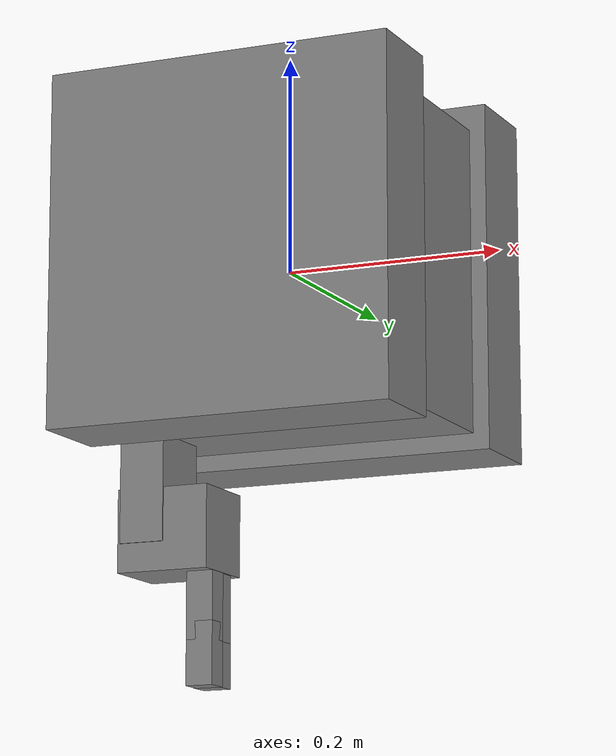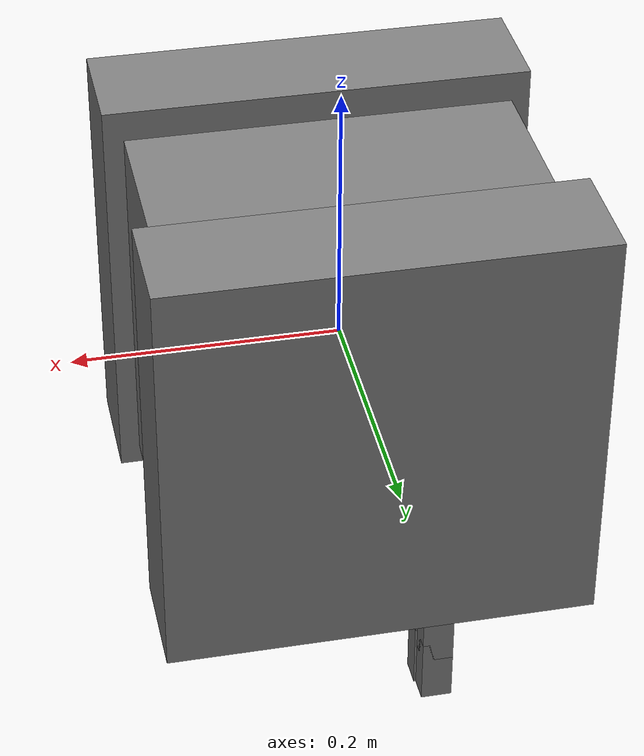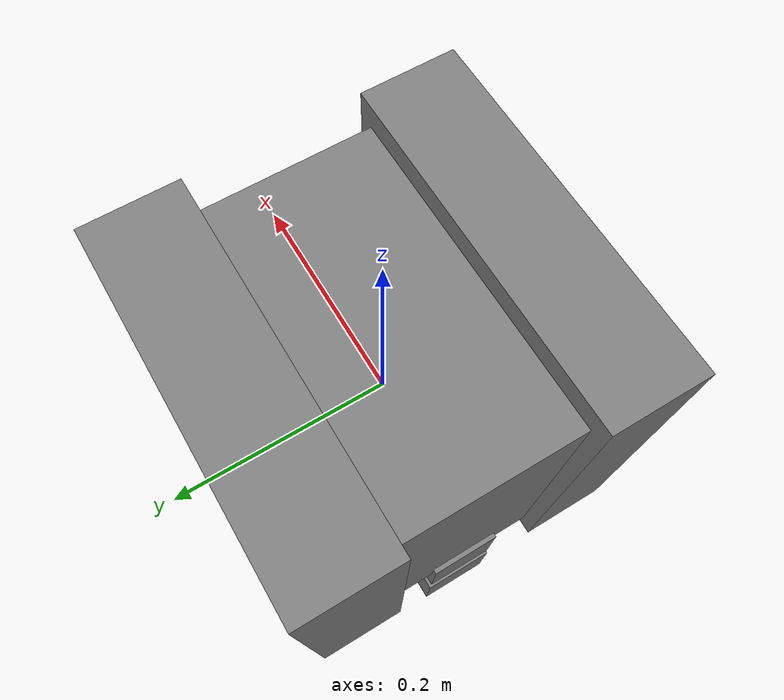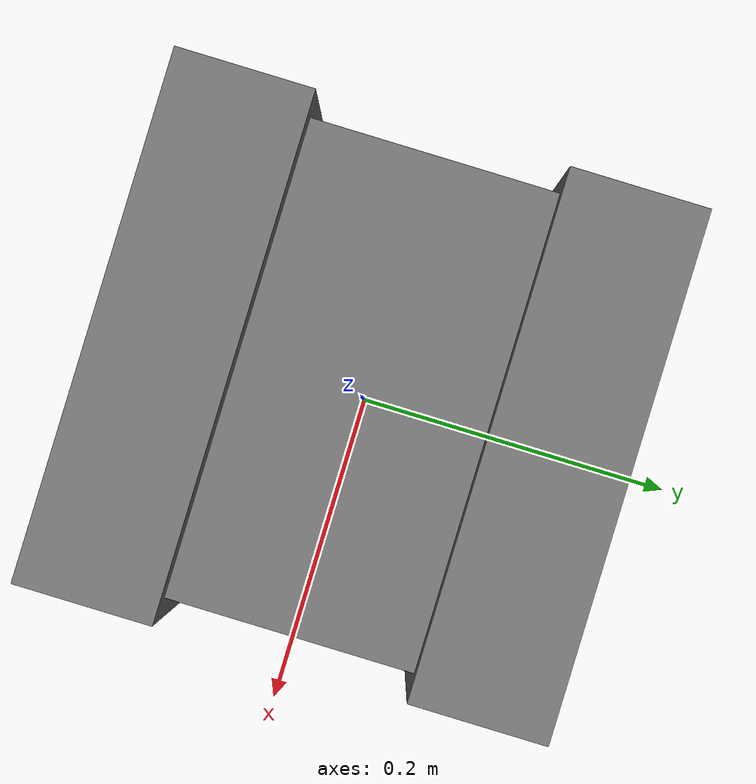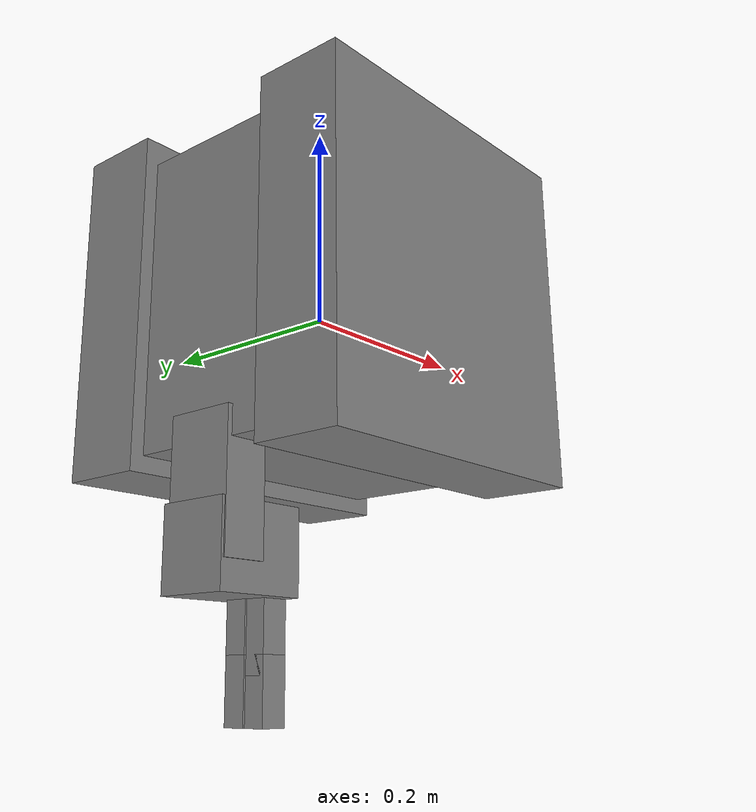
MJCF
<mujoco model="astrobee">
  <compiler angle="radian" autolimits="true"/>
  <default/>
  <worldbody>
    <geom size="0.145257 0.075971 0.140565" pos="-0.000794 0.000229 -0.003907" type="box"/>
    <geom size="0.1596 0.041981 0.159794" pos="0 -0.117546 0" type="box"/>
    <geom size="0.1596 0.041981 0.159794" pos="0 0.117546 0" type="box"/>
    <geom size="0.0452205 0.0762 0.038125" pos="-0.01 -0.038125 -0.065" quat="4.63268e-05 0 1 0" type="box"/>
    <body name="honey_top_aft_arm_proximal_link" pos="-0.129444 0 -0.130011" quat="-0.707074 0 0.70714 0" gravcomp="0">
      <inertial pos="0 0 0" mass="0.1623" diaginertia="0.02705 0.02705 0.02705"/>
      <joint name="top_aft_arm_proximal_joint" pos="0 0 0" axis="0 -1 0" range="-2.0944 1.57079"/>
      <geom size="0.061625 0.034 0.0212" pos="-0.049625 -0.0022 0" type="box"/>
      <body name="honey_top_aft_arm_distal_link" pos="-0.1 0 0" gravcomp="0">
        <inertial pos="0 0 0" mass="0.1033" diaginertia="0.002705 0.002705 0.002705"/>
        <joint name="top_aft_arm_distal_joint" pos="0 0 0" axis="0 0 1" range="-1.57079 1.57079"/>
        <geom size="0.0375 0.035 0.0437" pos="0 0 -0.02" type="box"/>
        <body name="honey_top_aft_gripper_left_proximal_link" pos="-0.039 -0.010002 -0.0497" gravcomp="0">
          <inertial pos="0 0 0" mass="0.04" diaginertia="0.002705 0.002705 0.002705"/>
          <joint name="top_aft_gripper_left_proximal_joint" pos="0 0 0" axis="0 0 1" range="0.349066 0.698132"/>
          <geom size="0.033827 0.010875 0.0127" pos="-0.025547 0 -0.000875" type="box"/>
          <body name="honey_top_aft_gripper_left_distal_link" pos="-0.05 0 0" gravcomp="0">
            <inertial pos="0 0 0" mass="0.0116026" diaginertia="0.002705 0.002705 0.002705"/>
            <joint name="top_aft_gripper_left_distal_joint" pos="0 0 0" axis="0 0 1" range="-1.22173 -0.69813"/>
            <geom size="0.0284765 0.010875 0.0127" pos="-0.021524 0 -0.000875" type="box"/>
          </body>
        </body>
        <body name="honey_top_aft_gripper_right_proximal_link" pos="-0.039 0.010002 -0.0497" gravcomp="0">
          <inertial pos="0 0 0" mass="0.04" diaginertia="0.002705 0.002705 0.002705"/>
          <joint name="top_aft_gripper_right_proximal_joint" pos="0 0 0" axis="0 0 1" range="-0.698132 -0.349066"/>
          <geom size="0.033827 0.010875 0.0127" pos="-0.025547 0 0.000875" type="box"/>
          <body name="honey_top_aft_gripper_right_distal_link" pos="-0.05 0 0" gravcomp="0">
            <inertial pos="0 0 0" mass="0.02285" diaginertia="0.002705 0.002705 0.002705"/>
            <joint name="top_aft_gripper_right_distal_joint" pos="0 0 0" axis="0 0 1" range="0.69813 1.22173"/>
            <geom size="0.028447 0.010875 0.0127" pos="-0.021512 0 0.000875" type="box"/>
          </body>
        </body>
      </body>
    </body>
  </worldbody>
</mujoco>
